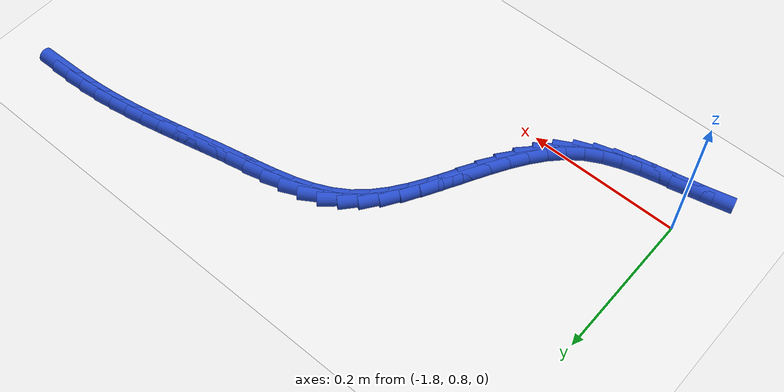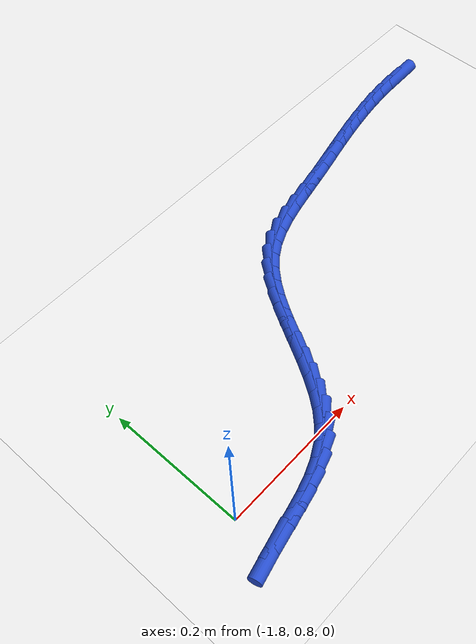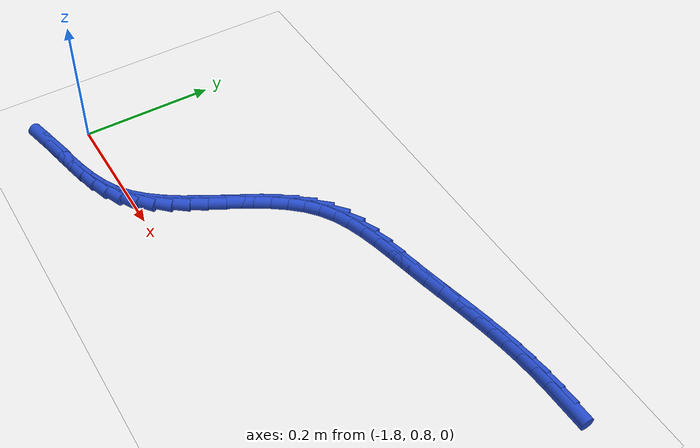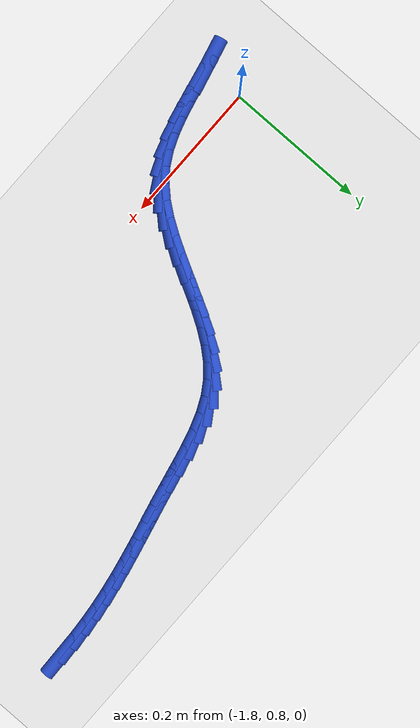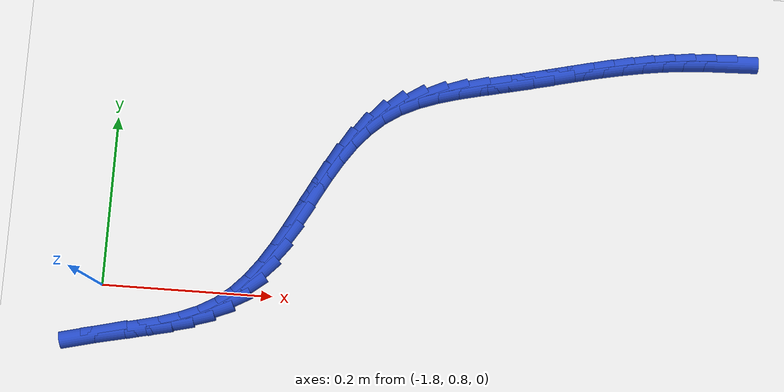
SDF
<sdf version="1.6">
 <world name="default">
  <model name="ground_plane">
   <static>1</static>
   <link name="link">
    <collision name="collision">
     <geometry><plane><normal>0 0 1</normal><size>100 100</size></plane></geometry>
     <surface><friction><ode><mu>100</mu><mu2>50</mu2></ode></friction></surface>
    </collision>
    <visual name="visual">
     <cast_shadows>0</cast_shadows>
     <geometry><plane><normal>0 0 1</normal><size>100 100</size></plane></geometry>
     <material>
      <script><uri>file://media/materials/scripts/gazebo.material</uri><name>Gazebo/WhiteGlow</name></script>
     </material>
    </visual>
   </link>
  </model>
  <model name="line">
   <link name="link_70">
    <pose>-1.086681343729162 1.1135642286020753 0.01 0 1.57 0.02938831419144995</pose>
    <collision name="collision">
     <geometry><cylinder><radius>0.01</radius><length>0.08</length></cylinder></geometry>
    </collision>
    <visual name="visual">
     <material>
      <script><name>Gazebo/Blue</name><uri>file://media/materials/scripts/gazebo.material</uri></script>
     </material>
     <geometry><cylinder><radius>0.01</radius><length>0.08</length></cylinder></geometry>
    </visual>
   </link>
   <link name="link_71">
    <pose>-1.1115282551030292 1.1128338094707275 0.01 0 1.57 0.06822958685624986</pose>
    <collision name="collision">
     <geometry><cylinder><radius>0.01</radius><length>0.08</length></cylinder></geometry>
    </collision>
    <visual name="visual">
     <material>
      <script><name>Gazebo/Blue</name><uri>file://media/materials/scripts/gazebo.material</uri></script>
     </material>
     <geometry><cylinder><radius>0.01</radius><length>0.08</length></cylinder></geometry>
    </visual>
   </link>
   <link name="link_72">
    <pose>-1.136192098671032 1.1111483894363132 0.01 0 1.57 0.10586034858756094</pose>
    <collision name="collision">
     <geometry><cylinder><radius>0.01</radius><length>0.08</length></cylinder></geometry>
    </collision>
    <visual name="visual">
     <material>
      <script><name>Gazebo/Blue</name><uri>file://media/materials/scripts/gazebo.material</uri></script>
     </material>
     <geometry><cylinder><radius>0.01</radius><length>0.08</length></cylinder></geometry>
    </visual>
   </link>
   <link name="link_73">
    <pose>-1.16057798105714 1.1085572048921641 0.01 0 1.57 0.14148737072743675</pose>
    <collision name="collision">
     <geometry><cylinder><radius>0.01</radius><length>0.08</length></cylinder></geometry>
    </collision>
    <visual name="visual">
     <material>
      <script><name>Gazebo/Blue</name><uri>file://media/materials/scripts/gazebo.material</uri></script>
     </material>
     <geometry><cylinder><radius>0.01</radius><length>0.08</length></cylinder></geometry>
    </visual>
   </link>
   <link name="link_74">
    <pose>-1.1846352135413685 1.1051305138066885 0.01 0 1.57 0.17187351367555587</pose>
    <collision name="collision">
     <geometry><cylinder><radius>0.01</radius><length>0.08</length></cylinder></geometry>
    </collision>
    <visual name="visual">
     <material>
      <script><name>Gazebo/Blue</name><uri>file://media/materials/scripts/gazebo.material</uri></script>
     </material>
     <geometry><cylinder><radius>0.01</radius><length>0.08</length></cylinder></geometry>
    </visual>
   </link>
   <link name="link_75">
    <pose>-1.2084390975408925 1.1009984889030753 0.01 0 1.57 0.19605157910003046</pose>
    <collision name="collision">
     <geometry><cylinder><radius>0.01</radius><length>0.08</length></cylinder></geometry>
    </collision>
    <visual name="visual">
     <material>
      <script><name>Gazebo/Blue</name><uri>file://media/materials/scripts/gazebo.material</uri></script>
     </material>
     <geometry><cylinder><radius>0.01</radius><length>0.08</length></cylinder></geometry>
    </visual>
   </link>
   <link name="link_76">
    <pose>-1.2320872328492711 1.0963019069230744 0.01 0 1.57 0.21374106385140762</pose>
    <collision name="collision">
     <geometry><cylinder><radius>0.01</radius><length>0.08</length></cylinder></geometry>
    </collision>
    <visual name="visual">
     <material>
      <script><name>Gazebo/Blue</name><uri>file://media/materials/scripts/gazebo.material</uri></script>
     </material>
     <geometry><cylinder><radius>0.01</radius><length>0.08</length></cylinder></geometry>
    </visual>
   </link>
   <link name="link_77">
    <pose>-1.2556772192600638 1.091181544608437 0.01 0 1.57 0.22480574770204884</pose>
    <collision name="collision">
     <geometry><cylinder><radius>0.01</radius><length>0.08</length></cylinder></geometry>
    </collision>
    <visual name="visual">
     <material>
      <script><name>Gazebo/Blue</name><uri>file://media/materials/scripts/gazebo.material</uri></script>
     </material>
     <geometry><cylinder><radius>0.01</radius><length>0.08</length></cylinder></geometry>
    </visual>
   </link>
   <link name="link_78">
    <pose>-1.2793066565668305 1.085778178700913 0.01 0 1.57 0.22923508137789167</pose>
    <collision name="collision">
     <geometry><cylinder><radius>0.01</radius><length>0.08</length></cylinder></geometry>
    </collision>
    <visual name="visual">
     <material>
      <script><name>Gazebo/Blue</name><uri>file://media/materials/scripts/gazebo.material</uri></script>
     </material>
     <geometry><cylinder><radius>0.01</radius><length>0.08</length></cylinder></geometry>
    </visual>
   </link>
   <link name="link_79">
    <pose>-1.3030731445631303 1.0802325859422544 0.01 0 1.57 0.2271278907790946</pose>
    <collision name="collision">
     <geometry><cylinder><radius>0.01</radius><length>0.08</length></cylinder></geometry>
    </collision>
    <visual name="visual">
     <material>
      <script><name>Gazebo/Blue</name><uri>file://media/materials/scripts/gazebo.material</uri></script>
     </material>
     <geometry><cylinder><radius>0.01</radius><length>0.08</length></cylinder></geometry>
    </visual>
   </link>
   <link name="link_80">
    <pose>-1.3270742830425226 1.0746855430742113 0.01 0 1.57 0.218688241988732</pose>
    <collision name="collision">
     <geometry><cylinder><radius>0.01</radius><length>0.08</length></cylinder></geometry>
    </collision>
    <visual name="visual">
     <material>
      <script><name>Gazebo/Blue</name><uri>file://media/materials/scripts/gazebo.material</uri></script>
     </material>
     <geometry><cylinder><radius>0.01</radius><length>0.08</length></cylinder></geometry>
    </visual>
   </link>
   <link name="link_81">
    <pose>-1.351407540017005 1.0692776599089766 0.01 0 1.57 0.21147250631867012</pose>
    <collision name="collision">
     <geometry><cylinder><radius>0.01</radius><length>0.08</length></cylinder></geometry>
    </collision>
    <visual name="visual">
     <material>
      <script><name>Gazebo/Blue</name><uri>file://media/materials/scripts/gazebo.material</uri></script>
     </material>
     <geometry><cylinder><radius>0.01</radius><length>0.08</length></cylinder></geometry>
    </visual>
   </link>
   <link name="link_82">
    <pose>-1.3760434550797909 1.0639887642459527 0.01 0 1.57 0.2262716564803338</pose>
    <collision name="collision">
     <geometry><cylinder><radius>0.01</radius><length>0.08</length></cylinder></geometry>
    </collision>
    <visual name="visual">
     <material>
      <script><name>Gazebo/Blue</name><uri>file://media/materials/scripts/gazebo.material</uri></script>
     </material>
     <geometry><cylinder><radius>0.01</radius><length>0.08</length></cylinder></geometry>
    </visual>
   </link>
   <link name="link_83">
    <pose>-1.4005889251716173 1.0583380526235378 0.01 0 1.57 0.26743883328999424</pose>
    <collision name="collision">
     <geometry><cylinder><radius>0.01</radius><length>0.08</length></cylinder></geometry>
    </collision>
    <visual name="visual">
     <material>
      <script><name>Gazebo/Blue</name><uri>file://media/materials/scripts/gazebo.material</uri></script>
     </material>
     <geometry><cylinder><radius>0.01</radius><length>0.08</length></cylinder></geometry>
    </visual>
   </link>
   <link name="link_84">
    <pose>-1.4245861360449223 1.05176275100802 0.01 0 1.57 0.33728565520012355</pose>
    <collision name="collision">
     <geometry><cylinder><radius>0.01</radius><length>0.08</length></cylinder></geometry>
    </collision>
    <visual name="visual">
     <material>
      <script><name>Gazebo/Blue</name><uri>file://media/materials/scripts/gazebo.material</uri></script>
     </material>
     <geometry><cylinder><radius>0.01</radius><length>0.08</length></cylinder></geometry>
    </visual>
   </link>
   <link name="link_85">
    <pose>-1.4475772734521453 1.043700085365688 0.01 0 1.57 0.4391704914647384</pose>
    <collision name="collision">
     <geometry><cylinder><radius>0.01</radius><length>0.08</length></cylinder></geometry>
    </collision>
    <visual name="visual">
     <material>
      <script><name>Gazebo/Blue</name><uri>file://media/materials/scripts/gazebo.material</uri></script>
     </material>
     <geometry><cylinder><radius>0.01</radius><length>0.08</length></cylinder></geometry>
    </visual>
   </link>
   <link name="link_86">
    <pose>-1.469104523145725 1.03358728166283 0.01 0 1.57 0.5756615023387348</pose>
    <collision name="collision">
     <geometry><cylinder><radius>0.01</radius><length>0.08</length></cylinder></geometry>
    </collision>
    <visual name="visual">
     <material>
      <script><name>Gazebo/Blue</name><uri>file://media/materials/scripts/gazebo.material</uri></script>
     </material>
     <geometry><cylinder><radius>0.01</radius><length>0.08</length></cylinder></geometry>
    </visual>
   </link>
   <link name="link_87">
    <pose>-1.4887111086485414 1.0208628977236138 0.01 0 1.57 0.7289749240008232</pose>
    <collision name="collision">
     <geometry><cylinder><radius>0.01</radius><length>0.08</length></cylinder></geometry>
    </collision>
    <visual name="visual">
     <material>
      <script><name>Gazebo/Blue</name><uri>file://media/materials/scripts/gazebo.material</uri></script>
     </material>
     <geometry><cylinder><radius>0.01</radius><length>0.08</length></cylinder></geometry>
    </visual>
   </link>
   <link name="link_88">
    <pose>-1.5061748177729901 1.0052665274054322 0.01 0 1.57 0.8570866139012752</pose>
    <collision name="collision">
     <geometry><cylinder><radius>0.01</radius><length>0.08</length></cylinder></geometry>
    </collision>
    <visual name="visual">
     <material>
      <script><name>Gazebo/Blue</name><uri>file://media/materials/scripts/gazebo.material</uri></script>
     </material>
     <geometry><cylinder><radius>0.01</radius><length>0.08</length></cylinder></geometry>
    </visual>
   </link>
   <link name="link_89">
    <pose>-1.5218041183499629 0.9872188307587024 0.01 0 1.57 0.9538179005927426</pose>
    <collision name="collision">
     <geometry><cylinder><radius>0.01</radius><length>0.08</length></cylinder></geometry>
    </collision>
    <visual name="visual">
     <material>
      <script><name>Gazebo/Blue</name><uri>file://media/materials/scripts/gazebo.material</uri></script>
     </material>
     <geometry><cylinder><radius>0.01</radius><length>0.08</length></cylinder></geometry>
    </visual>
   </link>
   <link name="link_90">
    <pose>-1.5359804335910876 0.9672340975950672 0.01 0 1.57 1.021485286139983</pose>
    <collision name="collision">
     <geometry><cylinder><radius>0.01</radius><length>0.08</length></cylinder></geometry>
    </collision>
    <visual name="visual">
     <material>
      <script><name>Gazebo/Blue</name><uri>file://media/materials/scripts/gazebo.material</uri></script>
     </material>
     <geometry><cylinder><radius>0.01</radius><length>0.08</length></cylinder></geometry>
    </visual>
   </link>
   <link name="link_91">
    <pose>-1.5490851867079933 0.9458266177261706 0.01 0 1.57 1.0631202853963024</pose>
    <collision name="collision">
     <geometry><cylinder><radius>0.01</radius><length>0.08</length></cylinder></geometry>
    </collision>
    <visual name="visual">
     <material>
      <script><name>Gazebo/Blue</name><uri>file://media/materials/scripts/gazebo.material</uri></script>
     </material>
     <geometry><cylinder><radius>0.01</radius><length>0.08</length></cylinder></geometry>
    </visual>
   </link>
   <link name="link_92">
    <pose>-1.5614998009123093 0.9235106809636571 0.01 0 1.57 1.0810500941845627</pose>
    <collision name="collision">
     <geometry><cylinder><radius>0.01</radius><length>0.08</length></cylinder></geometry>
    </collision>
    <visual name="visual">
     <material>
      <script><name>Gazebo/Blue</name><uri>file://media/materials/scripts/gazebo.material</uri></script>
     </material>
     <geometry><cylinder><radius>0.01</radius><length>0.08</length></cylinder></geometry>
    </visual>
   </link>
   <link name="link_93">
    <pose>-1.5736056994156638 0.9008005771191699 0.01 0 1.57 1.076348227262313</pose>
    <collision name="collision">
     <geometry><cylinder><radius>0.01</radius><length>0.08</length></cylinder></geometry>
    </collision>
    <visual name="visual">
     <material>
      <script><name>Gazebo/Blue</name><uri>file://media/materials/scripts/gazebo.material</uri></script>
     </material>
     <geometry><cylinder><radius>0.01</radius><length>0.08</length></cylinder></geometry>
    </visual>
   </link>
   <link name="link_94">
    <pose>-1.5857843054296867 0.8782105960043538 0.01 0 1.57 1.0486785090383708</pose>
    <collision name="collision">
     <geometry><cylinder><radius>0.01</radius><length>0.08</length></cylinder></geometry>
    </collision>
    <visual name="visual">
     <material>
      <script><name>Gazebo/Blue</name><uri>file://media/materials/scripts/gazebo.material</uri></script>
     </material>
     <geometry><cylinder><radius>0.01</radius><length>0.08</length></cylinder></geometry>
    </visual>
   </link>
   <link name="link_95">
    <pose>-1.5984170421660058 0.8562550274308518 0.01 0 1.57 0.9963213064896234</pose>
    <collision name="collision">
     <geometry><cylinder><radius>0.01</radius><length>0.08</length></cylinder></geometry>
    </collision>
    <visual name="visual">
     <material>
      <script><name>Gazebo/Blue</name><uri>file://media/materials/scripts/gazebo.material</uri></script>
     </material>
     <geometry><cylinder><radius>0.01</radius><length>0.08</length></cylinder></geometry>
    </visual>
   </link>
   <link name="link_96">
    <pose>-1.6118853328362508 0.8354481612103086 0.01 0 1.57 0.9164406746813843</pose>
    <collision name="collision">
     <geometry><cylinder><radius>0.01</radius><length>0.08</length></cylinder></geometry>
    </collision>
    <visual name="visual">
     <material>
      <script><name>Gazebo/Blue</name><uri>file://media/materials/scripts/gazebo.material</uri></script>
     </material>
     <geometry><cylinder><radius>0.01</radius><length>0.08</length></cylinder></geometry>
    </visual>
   </link>
   <link name="link_97">
    <pose>-1.6265706006520502 0.816304287154368 0.01 0 1.57 0.8059341801418693</pose>
    <collision name="collision">
     <geometry><cylinder><radius>0.01</radius><length>0.08</length></cylinder></geometry>
    </collision>
    <visual name="visual">
     <material>
      <script><name>Gazebo/Blue</name><uri>file://media/materials/scripts/gazebo.material</uri></script>
     </material>
     <geometry><cylinder><radius>0.01</radius><length>0.08</length></cylinder></geometry>
    </visual>
   </link>
   <link name="link_98">
    <pose>-1.6428542688250327 0.7993376950746734 0.01 0 1.57 0.6634759655970386</pose>
    <collision name="collision">
     <geometry><cylinder><radius>0.01</radius><length>0.08</length></cylinder></geometry>
    </collision>
    <visual name="visual">
     <material>
      <script><name>Gazebo/Blue</name><uri>file://media/materials/scripts/gazebo.material</uri></script>
     </material>
     <geometry><cylinder><radius>0.01</radius><length>0.08</length></cylinder></geometry>
    </visual>
   </link>
   <link name="link_99">
    <pose>-1.6611171270126381 0.7850618073733854 0.01 0 1.57 0.508089312409806</pose>
    <collision name="collision">
     <geometry><cylinder><radius>0.01</radius><length>0.08</length></cylinder></geometry>
    </collision>
    <visual name="visual">
     <material>
      <script><name>Gazebo/Blue</name><uri>file://media/materials/scripts/gazebo.material</uri></script>
     </material>
     <geometry><cylinder><radius>0.01</radius><length>0.08</length></cylinder></geometry>
    </visual>
   </link>
   <link name="link_100">
    <pose>-1.681525981303671 0.7736970780216007 0.01 0 1.57 0.3832920697490742</pose>
    <collision name="collision">
     <geometry><cylinder><radius>0.01</radius><length>0.08</length></cylinder></geometry>
    </collision>
    <visual name="visual">
     <material>
      <script><name>Gazebo/Blue</name><uri>file://media/materials/scripts/gazebo.material</uri></script>
     </material>
     <geometry><cylinder><radius>0.01</radius><length>0.08</length></cylinder></geometry>
    </visual>
   </link>
   <link name="link_101">
    <pose>-1.703723446904747 0.7647462826129983 0.01 0 1.57 0.29445334868343</pose>
    <collision name="collision">
     <geometry><cylinder><radius>0.01</radius><length>0.08</length></cylinder></geometry>
    </collision>
    <visual name="visual">
     <material>
      <script><name>Gazebo/Blue</name><uri>file://media/materials/scripts/gazebo.material</uri></script>
     </material>
     <geometry><cylinder><radius>0.01</radius><length>0.08</length></cylinder></geometry>
    </visual>
   </link>
   <link name="link_102">
    <pose>-1.7272733482777953 0.7576043230339427 0.01 0 1.57 0.23810734116514978</pose>
    <collision name="collision">
     <geometry><cylinder><radius>0.01</radius><length>0.08</length></cylinder></geometry>
    </collision>
    <visual name="visual">
     <material>
      <script><name>Gazebo/Blue</name><uri>file://media/materials/scripts/gazebo.material</uri></script>
     </material>
     <geometry><cylinder><radius>0.01</radius><length>0.08</length></cylinder></geometry>
    </visual>
   </link>
   <link name="link_103">
    <pose>-1.751739509884746 0.7516661011707985 0.01 0 1.57 0.2108617562089516</pose>
    <collision name="collision">
     <geometry><cylinder><radius>0.01</radius><length>0.08</length></cylinder></geometry>
    </collision>
    <visual name="visual">
     <material>
      <script><name>Gazebo/Blue</name><uri>file://media/materials/scripts/gazebo.material</uri></script>
     </material>
     <geometry><cylinder><radius>0.01</radius><length>0.08</length></cylinder></geometry>
    </visual>
   </link>
   <link name="link_104">
    <pose>-1.7766857561875287 0.7463265189099304 0.01 0 1.57 0.21074926254034246</pose>
    <collision name="collision">
     <geometry><cylinder><radius>0.01</radius><length>0.08</length></cylinder></geometry>
    </collision>
    <visual name="visual">
     <material>
      <script><name>Gazebo/Blue</name><uri>file://media/materials/scripts/gazebo.material</uri></script>
     </material>
     <geometry><cylinder><radius>0.01</radius><length>0.08</length></cylinder></geometry>
    </visual>
   </link>
   <link name="link_105">
    <pose>-1.8016759116480727 0.7409804781377035 0.01 0 1.57 0.23762368587519453</pose>
    <collision name="collision">
     <geometry><cylinder><radius>0.01</radius><length>0.08</length></cylinder></geometry>
    </collision>
    <visual name="visual">
     <material>
      <script><name>Gazebo/Blue</name><uri>file://media/materials/scripts/gazebo.material</uri></script>
     </material>
     <geometry><cylinder><radius>0.01</radius><length>0.08</length></cylinder></geometry>
    </visual>
   </link>
  </model>
 </world>
</sdf>
